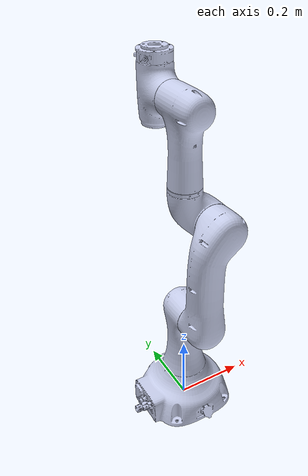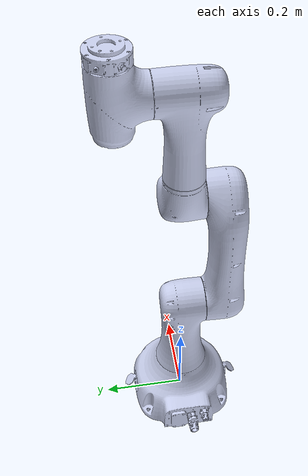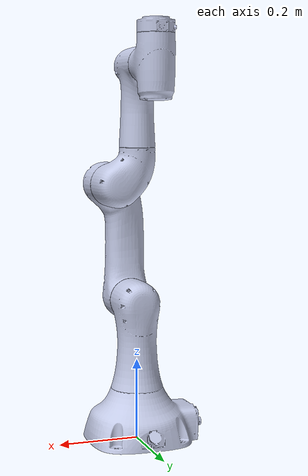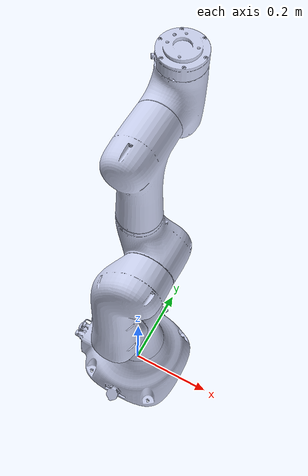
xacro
<?xml version="1.0" encoding="utf-8"?>
<robot
  name="SR3">
  <link
    name="base_link_SR3">
    <inertial>
      <origin
        xyz="-0.00665299345574543 0.000285214258146948 0.0497538557831802"
        rpy="0 0 0" />
      <mass
        value="4.94151713808091" />
      <inertia
        ixx="0.0212229863200074"
        ixy="-6.50973498750642E-06"
        ixz="-0.000228182663844902"
        iyy="0.0255242317993365"
        iyz="-5.07955297209174E-05"
        izz="0.0364060657012918" />
    </inertial>
    <visual>
      <origin
        xyz="0 0 0"
        rpy="0 0 0" />
      <geometry>
        <mesh
          filename="package://mm/meshes/base_link_SR3.STL" />
      </geometry>
      <material
        name="">
        <color
          rgba="0.792156862745098 0.819607843137255 0.933333333333333 1" />
      </material>
    </visual>
    <collision>
      <origin
        xyz="0 0 0"
        rpy="0 0 0" />
      <geometry>
        <mesh
          filename="package://mm/meshes/base_link_SR3.STL" />
      </geometry>
    </collision>
  </link>
  <link
    name="link1">
    <inertial>
      <origin
        xyz="5.03236267279465E-07 -7.57164275807564E-05 0.133527693621839"
        rpy="0 0 0" />
      <mass
        value="2.32812439125824" />
      <inertia
        ixx="0.0164327281211342"
        ixy="-4.70010574942902E-10"
        ixz="-2.05726983342433E-09"
        iyy="0.0164871862490105"
        iyz="4.13186949402548E-05"
        izz="0.00333090957836079" />
    </inertial>
    <visual>
      <origin
        xyz="0 0 0"
        rpy="0 0 0" />
      <geometry>
        <mesh
          filename="package://mm/meshes/link1.STL" />
      </geometry>
      <material
        name="">
        <color
          rgba="0.792156862745098 0.819607843137255 0.933333333333333 1" />
      </material>
    </visual>
    <collision>
      <origin
        xyz="0 0 0"
        rpy="0 0 0" />
      <geometry>
        <mesh
          filename="package://mm/meshes/link1.STL" />
      </geometry>
    </collision>
  </link>
  <joint
    name="joint1"
    type="continuous">
    <origin
      xyz="0 0 0.12"
      rpy="0 0 0" />
    <parent
      link="base_link_SR3" />
    <child
      link="link1" />
    <axis
      xyz="0 0 1" />
    <limit
      lower="-3.05"
      upper="3.05"
      effort="500"
      velocity="3.14" />
  </joint>
  <link
    name="link2">
    <inertial>
      <origin
        xyz="0.0133479077511156 0.148448457756438 0.0574855395399892"
        rpy="0 0 0" />
      <mass
        value="3.26264546371795" />
      <inertia
        ixx="0.0470364613023851"
        ixy="-0.00602707690389159"
        ixz="0.000214989818125931"
        iyy="0.00591384397183377"
        iyz="4.96996722455937E-05"
        izz="0.0486013894802473" />
    </inertial>
    <visual>
      <origin
        xyz="0 0 0"
        rpy="0 0 0" />
      <geometry>
        <mesh
          filename="package://mm/meshes/link2.STL" />
      </geometry>
      <material
        name="">
        <color
          rgba="0.792156862745098 0.819607843137255 0.933333333333333 1" />
      </material>
    </visual>
    <collision>
      <origin
        xyz="0 0 0"
        rpy="0 0 0" />
      <geometry>
        <mesh
          filename="package://mm/meshes/link2.STL" />
      </geometry>
    </collision>
  </link>
  <joint
    name="joint2"
    type="continuous">
    <origin
      xyz="0 -0.04 0.224"
      rpy="1.5708 0 0" />
    <parent
      link="link1" />
    <child
      link="link2" />
    <axis
      xyz="0 0 -1" />
    <limit
      lower="-2.36"
      upper="2.27"
      effort="500"
      velocity="3.14" />
  </joint>
  <link
    name="link3">
    <inertial>
      <origin
        xyz="-0.0186770843557828 -0.0187600328625938 0.0378934010238718"
        rpy="0 0 0" />
      <mass
        value="1.21569296868818" />
      <inertia
        ixx="0.00235041187563905"
        ixy="-0.00068615200826875"
        ixz="3.49560221877262E-05"
        iyy="0.00225222357522336"
        iyz="3.79069103855797E-05"
        izz="0.0031012213331054" />
    </inertial>
    <visual>
      <origin
        xyz="0 0 0"
        rpy="0 0 0" />
      <geometry>
        <mesh
          filename="package://mm/meshes/link3.STL" />
      </geometry>
      <material
        name="">
        <color
          rgba="0.792156862745098 0.819607843137255 0.933333333333333 1" />
      </material>
    </visual>
    <collision>
      <origin
        xyz="0 0 0"
        rpy="0 0 0" />
      <geometry>
        <mesh
          filename="package://mm/meshes/link3.STL" />
      </geometry>
    </collision>
  </link>
  <joint
    name="joint3"
    type="continuous">
    <origin
      xyz="0.05 0.29 0"
      rpy="3.1416 0 0" />
    <parent
      link="link2" />
    <child
      link="link3" />
    <axis
      xyz="0 0 1" />
    <limit
      lower="-3.05"
      upper="2.36"
      effort="500"
      velocity="3.14" />
  </joint>
  <link
    name="link4">
    <inertial>
      <origin
        xyz="6.57185981239821E-07 -0.000201201143623419 0.143015199769376"
        rpy="0 0 0" />
      <mass
        value="1.71805055050152" />
      <inertia
        ixx="0.0102698627641401"
        ixy="3.91405003964369E-08"
        ixz="-2.12714058732629E-08"
        iyy="0.0093888427389068"
        iyz="2.94041668471535E-05"
        izz="0.00243175777794435" />
    </inertial>
    <visual>
      <origin
        xyz="0 0 0"
        rpy="0 0 0" />
      <geometry>
        <mesh
          filename="package://mm/meshes/link4.STL" />
      </geometry>
      <material
        name="">
        <color
          rgba="0.792156862745098 0.819607843137255 0.933333333333333 1" />
      </material>
    </visual>
    <collision>
      <origin
        xyz="0 0 0"
        rpy="0 0 0" />
      <geometry>
        <mesh
          filename="package://mm/meshes/link4.STL" />
      </geometry>
    </collision>
  </link>
  <joint
    name="joint4"
    type="continuous">
    <origin
      xyz="-0.05 -0.085 0.04"
      rpy="1.5708 0 0" />
    <parent
      link="link3" />
    <child
      link="link4" />
    <axis
      xyz="0 0 1" />
    <limit
      lower="-3.05"
      upper="3.05"
      effort="500"
      velocity="3.93" />
  </joint>
  <link
    name="link5">
    <inertial>
      <origin
        xyz="-1.22670438825414E-06 0.0030804625865084 0.0803320087142685"
        rpy="0 0 0" />
      <mass
        value="1.15205534580379" />
      <inertia
        ixx="0.00285938737990652"
        ixy="5.37014227053037E-09"
        ixz="2.63756002370502E-08"
        iyy="0.00152386792655846"
        iyz="-3.43893790074872E-05"
        izz="0.00251406917075213" />
    </inertial>
    <visual>
      <origin
        xyz="0 0 0"
        rpy="0 0 0" />
      <geometry>
        <mesh
          filename="package://mm/meshes/link5.STL" />
      </geometry>
      <material
        name="">
        <color
          rgba="0.792156862745098 0.819607843137255 0.933333333333333 1" />
      </material>
    </visual>
    <collision>
      <origin
        xyz="0 0 0"
        rpy="0 0 0" />
      <geometry>
        <mesh
          filename="package://mm/meshes/link5.STL" />
      </geometry>
    </collision>
  </link>
  <joint
    name="joint5"
    type="continuous">
    <origin
      xyz="0 0.04568 0.205"
      rpy="-1.5708 0 0" />
    <parent
      link="link4" />
    <child
      link="link5" />
    <axis
      xyz="0 0 1" />
    <limit
      lower="-3.05"
      upper="3.05"
      effort="500"
      velocity="3.93" />
  </joint>
  <link
    name="link6">
    <inertial>
      <origin
        xyz="0.000306707074067178 -0.000315737999562027 0.0166596472914794"
        rpy="0 0 0" />
      <mass
        value="0.165189784121238" />
      <inertia
        ixx="9.23911512177905E-05"
        ixy="-6.02666719845316E-07"
        ixz="2.06548997761909E-07"
        iyy="9.29182191554335E-05"
        iyz="-2.34209031434719E-07"
        izz="0.000161306720108144" />
    </inertial>
    <visual>
      <origin
        xyz="0 0 0"
        rpy="0 0 0" />
      <geometry>
        <mesh
          filename="package://mm/meshes/link6.STL" />
      </geometry>
      <material
        name="">
        <color
          rgba="0.792156862745098 0.819607843137255 0.933333333333333 1" />
      </material>
    </visual>
    <collision>
      <origin
        xyz="0 0 0"
        rpy="0 0 0" />
      <geometry>
        <mesh
          filename="package://mm/meshes/link6.STL" />
      </geometry>
    </collision>
  </link>
  <joint
    name="joint6"
    type="continuous">
    <origin
      xyz="0 -0.069 0.09032"
      rpy="1.5708 0 0" />
    <parent
      link="link5" />
    <child
      link="link6" />
    <axis
      xyz="0 0 1" />
    <limit
      lower="-3.05"
      upper="3.05"
      effort="500"
      velocity="3.93" />
  </joint>

</robot>
